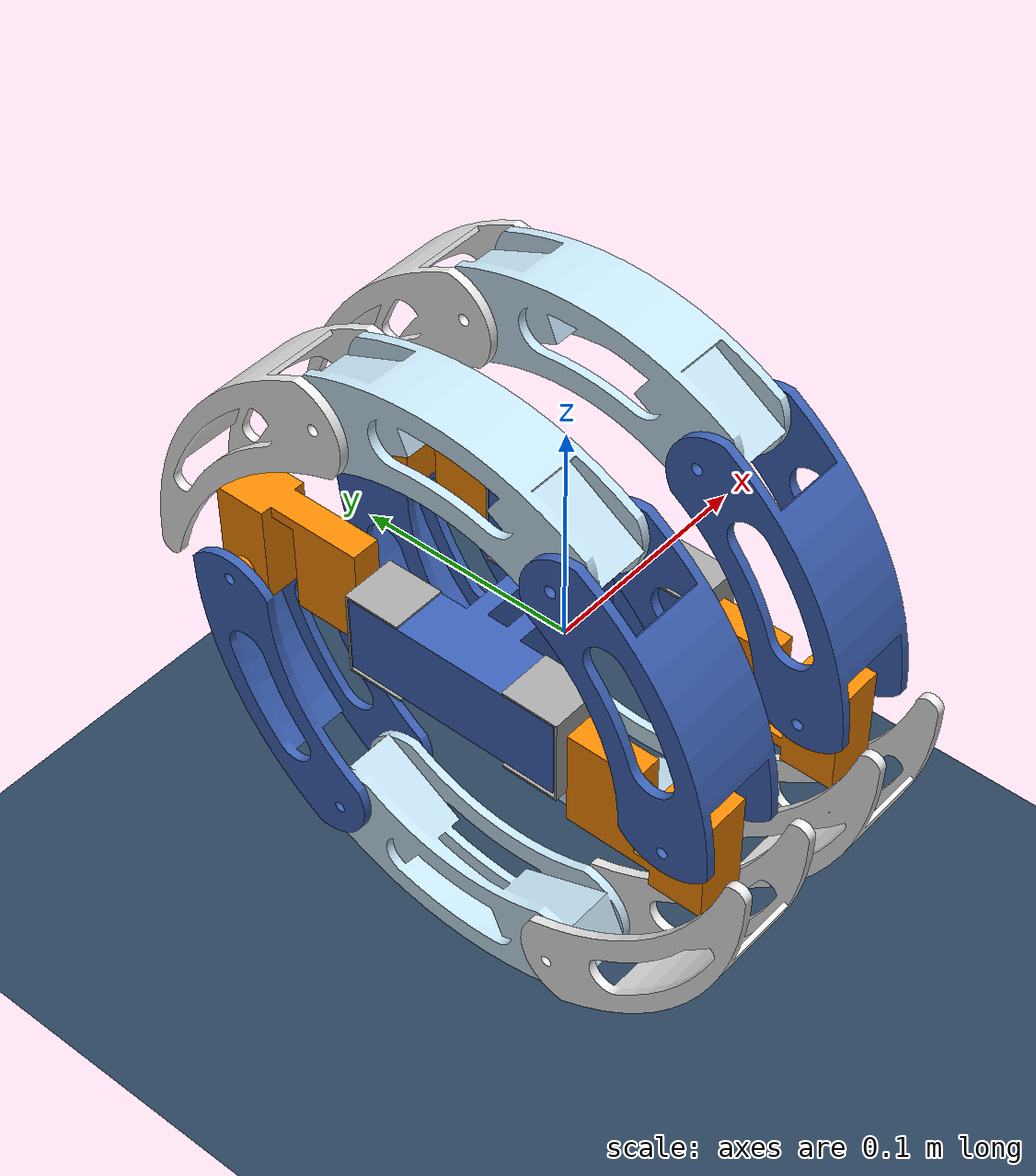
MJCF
<mujoco model="XiaoTianRobot">
  <option viscosity="0.1" integrator="RK4" timestep="0.001" gravity="0 0 -9.81" />
  <include file="mjmodel.xml" />

  <statistic center="0 0 0.3" extent="1.2" />

  <visual>
    <headlight diffuse="0.6 0.6 0.6" ambient="0.3 0.3 0.3" specular="0 0 0" />
    <rgba haze="0.15 0.25 0.35 1" />
    <global azimuth="120" elevation="-20" />
  </visual>

  <asset>
    <texture type="skybox" builtin="gradient" rgb1="0.3 0.5 0.7" rgb2="0 0 0" width="512"
      height="3072" />
    <texture type="2d" name="groundplane" builtin="checker" mark="edge" rgb1="0.2 0.3 0.4"
      rgb2="0.1 0.2 0.3" markrgb="0.8 0.8 0.8" width="300" height="300" />
    <material name="groundplane" texture="groundplane" texuniform="true" texrepeat="5 5"
      reflectance="0.2" />
  </asset>

  <worldbody>
    <light pos="0 0 1.5" dir="0 0 -1" directional="true" />
    <geom name="floor" pos="0 0 -0.2" size="0 0 0.05" type="plane" material="groundplane" />
  </worldbody>

</mujoco>

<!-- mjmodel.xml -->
<mujoco model="onshape">

  <compiler angle="radian" autolimits="true" />
  <size />
  <default />
  <asset>
    <mesh name="part_1" file="part_1.stl" />
    <mesh name="arm5" file="arm5.stl" />
    <mesh name="arm4" file="arm4.stl" />
    <mesh name="arm3" file="arm3.stl" />
    <mesh name="arm2" file="arm2.stl" />
    <mesh name="arm1" file="arm1.stl" />
  </asset>
  <worldbody>
    <body name="part_1" pos="0 0 0">
      <freejoint/>
      <inertial pos="-0.00500303 0.00768839 0.00609961" quat="0 0.707107 0 0.707107" mass="1.4693" diaginertia="0.00314375 0.00226565 0.00119546" />
      <geom pos="-0.00500303 0.00768839 -0.0119004" type="mesh" rgba="0.231373 0.380392 0.705882 1" mesh="part_1" />
      <body name="arm5" pos="0.034997 0.0457836 0.0240996" quat="9.38184e-07 0.707105 -0.707108 -9.38187e-07">
        <inertial pos="-0.00577778 0 0.019" quat="0.707107 0 0 0.707107" mass="0.0156937" diaginertia="5.35559e-06 5.06341e-06 1.92694e-06" />
        <geom pos="0.0455 -0.0205 0.019" quat="0.707105 -0.707108 0 0" type="mesh" rgba="0.647059 0.647059 0.647059 1" mesh="arm5" />
        <body name="arm4" pos="-0.0135 0 0.019" quat="9.38184e-07 -0.707105 -9.38187e-07 -0.707108">
          <inertial pos="-0.0130017 0 -0.0385551" quat="0.707079 -0.0062266 -0.0062266 0.707079" mass="0.304573" diaginertia="0.000182801 0.000140279 6.25312e-05" />
          <geom pos="0 -0.0205 0.06" quat="0.499998 -0.5 -0.5 -0.500002" type="mesh" rgba="0.972549 0.529412 0.00392157 1" mesh="arm4" />
          <body name="arm3" pos="0 0.0165 -0.055" quat="0.499998 0.5 -0.5 0.500002">
            <inertial pos="0.0164728 -0.0533065 0.0165" quat="0.684885 0.684885 0.175878 0.175878" mass="0.253495" diaginertia="0.000453233 0.000429282 0.000133321" />
            <joint name="joint134" pos="0 0 0" axis="0 0 1" />
            <geom pos="0.115 0 0.037" quat="1.32679e-06 1 0 0" type="mesh" rgba="0.231373 0.380392 0.705882 1" mesh="arm3" />
            <body name="arm2" pos="0.0516066 -0.0959494 0.001" quat="1.32679e-06 1 0 0">
              <inertial pos="0.0535692 0.0124398 -0.0155" quat="-0.0319414 0.706385 0.0319414 0.706385" mass="0.582673" diaginertia="0.00114357 0.00112104 0.000135036" />
              <joint name="joint123" pos="0 0 0" axis="0 0 1" />
              <geom pos="0.0633934 -0.0959494 -0.036" type="mesh" rgba="0.768627 0.886275 0.952941 1" mesh="arm2" />
              <body name="arm1" pos="0.108614 0.0100944 0.001" quat="1.32679e-06 1 0 0">
                <inertial pos="0.0422881 0.0309098 0.0165" quat="0.659314 0.659314 -0.255547 -0.255547" mass="0.226307" diaginertia="0.00045052 0.000421982 0.000104411" />
                <joint name="joint112" pos="0 0 0" axis="0 0 1" />
                <geom pos="-0.0452202 0.106044 0.037" quat="1.32679e-06 1 0 0" type="mesh" rgba="0.917647 0.917647 0.917647 1" mesh="arm1" />
              </body>
            </body>
          </body>
        </body>
      </body>
      <body name="arm5_2" pos="-0.045003 0.0457836 0.0240996" quat="9.38184e-07 0.707105 -0.707108 -9.38187e-07">
        <inertial pos="-0.00577778 0 0.019" quat="0.707107 0 0 0.707107" mass="0.0156937" diaginertia="5.35559e-06 5.06341e-06 1.92694e-06" />
        <geom pos="0.0455 -0.0205 0.019" quat="0.707105 -0.707108 0 0" type="mesh" rgba="0.647059 0.647059 0.647059 1" mesh="arm5" />
        <body name="arm4_2" pos="-0.0135 0 0.019" quat="9.38184e-07 -0.707105 -9.38187e-07 -0.707108">
          <inertial pos="-0.0130017 0 -0.0385551" quat="0.707079 -0.0062266 -0.0062266 0.707079" mass="0.304573" diaginertia="0.000182801 0.000140279 6.25312e-05" />
          <geom pos="0 -0.0205 0.06" quat="0.499998 -0.5 -0.5 -0.500002" type="mesh" rgba="0.972549 0.529412 0.00392157 1" mesh="arm4" />
          <body name="arm3_2" pos="0 -0.0165 -0.055" quat="0.499998 -0.5 -0.5 -0.500002">
            <inertial pos="0.0164728 0.0533065 0.0165" quat="0.684885 0.684885 -0.175878 -0.175878" mass="0.253495" diaginertia="0.000453233 0.000429282 0.000133321" />
            <joint name="joint234" pos="0 0 0" axis="0 0 1" />
            <geom pos="0.115 0 -0.004" type="mesh" rgba="0.231373 0.380392 0.705882 1" mesh="arm3" />
            <body name="arm2_2" pos="0.0516066 0.0959494 0.001" quat="1.32679e-06 1 0 0">
              <inertial pos="0.0535692 -0.0124398 -0.0155" quat="0.0319414 0.706385 -0.0319414 0.706385" mass="0.582673" diaginertia="0.00114357 0.00112104 0.000135036" />
              <joint name="joint223" pos="0 0 0" axis="0 0 1" />
              <geom pos="0.0633934 0.0959494 0.005" quat="1.32679e-06 1 0 0" type="mesh" rgba="0.768627 0.886275 0.952941 1" mesh="arm2" />
              <body name="arm1_2" pos="0.108614 -0.0100944 0.001" quat="1.32679e-06 1 0 0">
                <inertial pos="0.0422881 -0.0309098 0.0165" quat="0.659314 0.659314 0.255547 0.255547" mass="0.226307" diaginertia="0.00045052 0.000421982 0.000104411" />
                <joint name="joint212" pos="0 0 0" axis="0 0 1" />
                <geom pos="-0.0452202 -0.106044 -0.004" type="mesh" rgba="0.917647 0.917647 0.917647 1" mesh="arm1" />
              </body>
            </body>
          </body>
        </body>
      </body>
      <body name="arm5_3" pos="0.034997 -0.0304068 0.0240996" quat="9.38184e-07 0.707105 0.707108 9.38187e-07">
        <inertial pos="-0.00577778 0 0.019" quat="0.707107 0 0 0.707107" mass="0.0156937" diaginertia="5.35559e-06 5.06341e-06 1.92694e-06" />
        <geom pos="0.0455 -0.0205 0.019" quat="0.707105 -0.707108 0 0" type="mesh" rgba="0.647059 0.647059 0.647059 1" mesh="arm5" />
        <body name="arm4_3" pos="-0.0135 0 0.019" quat="0.707105 0 0.707108 0">
          <inertial pos="-0.0130017 0 -0.0385551" quat="0.707079 -0.0062266 -0.0062266 0.707079" mass="0.304573" diaginertia="0.000182801 0.000140279 6.25312e-05" />
          <geom pos="0 -0.0205 0.06" quat="0.499998 -0.5 -0.5 -0.500002" type="mesh" rgba="0.972549 0.529412 0.00392157 1" mesh="arm4" />
          <body name="arm3_3" pos="0 0.0165 -0.055" quat="0.499998 0.5 -0.5 0.500002">
            <inertial pos="0.0164728 -0.0533065 0.0165" quat="0.684885 0.684885 0.175878 0.175878" mass="0.253495" diaginertia="0.000453233 0.000429282 0.000133321" />
            <joint name="joint334" pos="0 0 0" axis="0 0 1" />
            <geom pos="0.115 0 0.037" quat="1.32679e-06 1 0 0" type="mesh" rgba="0.231373 0.380392 0.705882 1" mesh="arm3" />
            <body name="arm2_3" pos="0.0516066 -0.0959494 0.001" quat="1.32679e-06 1 0 0">
              <inertial pos="0.0535692 0.0124398 -0.0155" quat="-0.0319414 0.706385 0.0319414 0.706385" mass="0.582673" diaginertia="0.00114357 0.00112104 0.000135036" />
              <joint name="joint323" pos="0 0 0" axis="0 0 1" />
              <geom pos="0.0633934 -0.0959494 -0.036" type="mesh" rgba="0.768627 0.886275 0.952941 1" mesh="arm2" />
              <body name="arm1_3" pos="0.108614 0.0100944 0.001" quat="1.32679e-06 1 0 0">
                <inertial pos="0.0422881 0.0309098 0.0165" quat="0.659314 0.659314 -0.255547 -0.255547" mass="0.226307" diaginertia="0.00045052 0.000421982 0.000104411" />
                <joint name="joint312" pos="0 0 0" axis="0 0 1" />
                <geom pos="-0.0452202 0.106044 0.037" quat="1.32679e-06 1 0 0" type="mesh" rgba="0.917647 0.917647 0.917647 1" mesh="arm1" />
              </body>
            </body>
          </body>
        </body>
      </body>
      <body name="arm5_4" pos="-0.045003 -0.0304068 0.0240996" quat="9.38184e-07 0.707105 0.707108 9.38187e-07">
        <inertial pos="-0.00577778 0 0.019" quat="0.707107 0 0 0.707107" mass="0.0156937" diaginertia="5.35559e-06 5.06341e-06 1.92694e-06" />
        <geom pos="0.0455 -0.0205 0.019" quat="0.707105 -0.707108 0 0" type="mesh" rgba="0.647059 0.647059 0.647059 1" mesh="arm5" />
        <body name="arm4_4" pos="-0.0135 0 0.019" quat="0.707105 0 0.707108 0">
          <inertial pos="-0.0130017 0 -0.0385551" quat="0.707079 -0.0062266 -0.0062266 0.707079" mass="0.304573" diaginertia="0.000182801 0.000140279 6.25312e-05" />
          <geom pos="0 -0.0205 0.06" quat="0.499998 -0.5 -0.5 -0.500002" type="mesh" rgba="0.972549 0.529412 0.00392157 1" mesh="arm4" />
          <body name="arm3_4" pos="0 -0.0165 -0.055" quat="0.499998 -0.5 -0.5 -0.500002">
            <inertial pos="0.0164728 0.0533065 0.0165" quat="0.684885 0.684885 -0.175878 -0.175878" mass="0.253495" diaginertia="0.000453233 0.000429282 0.000133321" />
            <joint name="joint434" pos="0 0 0" axis="0 0 1" />
            <geom pos="0.115 0 -0.004" type="mesh" rgba="0.231373 0.380392 0.705882 1" mesh="arm3" />
            <body name="arm2_4" pos="0.0516066 0.0959494 0.001" quat="1.32679e-06 1 0 0">
              <inertial pos="0.0535692 -0.0124398 -0.0155" quat="0.0319414 0.706385 -0.0319414 0.706385" mass="0.582673" diaginertia="0.00114357 0.00112104 0.000135036" />
              <joint name="joint423" pos="0 0 0" axis="0 0 1" />
              <geom pos="0.0633934 0.0959494 0.005" quat="1.32679e-06 1 0 0" type="mesh" rgba="0.768627 0.886275 0.952941 1" mesh="arm2" />
              <body name="arm1_4" pos="0.108614 -0.0100944 0.001" quat="1.32679e-06 1 0 0">
                <inertial pos="0.0422881 -0.0309098 0.0165" quat="0.659314 0.659314 0.255547 0.255547" mass="0.226307" diaginertia="0.00045052 0.000421982 0.000104411" />
                <joint name="joint412" pos="0 0 0" axis="0 0 1" />
                <geom pos="-0.0452202 -0.106044 -0.004" type="mesh" rgba="0.917647 0.917647 0.917647 1" mesh="arm1" />
              </body>
            </body>
          </body>
        </body>
      </body>
    </body>
  </worldbody>

  <actuator>
    <motor name="joint112" gear="1" joint="joint112" />
    <motor name="joint212" gear="1" joint="joint212" />
    <motor name="joint312" gear="1" joint="joint312" />
    <motor name="joint412" gear="1" joint="joint412" />
    <motor name="joint123" gear="1" joint="joint123" />
    <motor name="joint223" gear="1" joint="joint223" />
    <motor name="joint323" gear="1" joint="joint323" />
    <motor name="joint423" gear="1" joint="joint423" />
    <motor name="joint134" gear="1" joint="joint134" />
    <motor name="joint234" gear="1" joint="joint234" />
    <motor name="joint334" gear="1" joint="joint334" />
    <motor name="joint434" gear="1" joint="joint434" />
  </actuator>
</mujoco>
